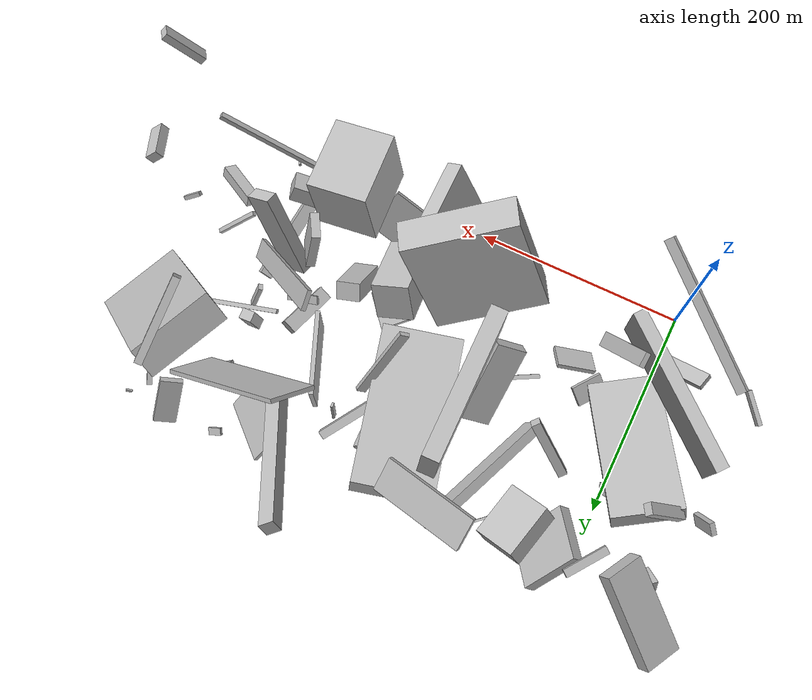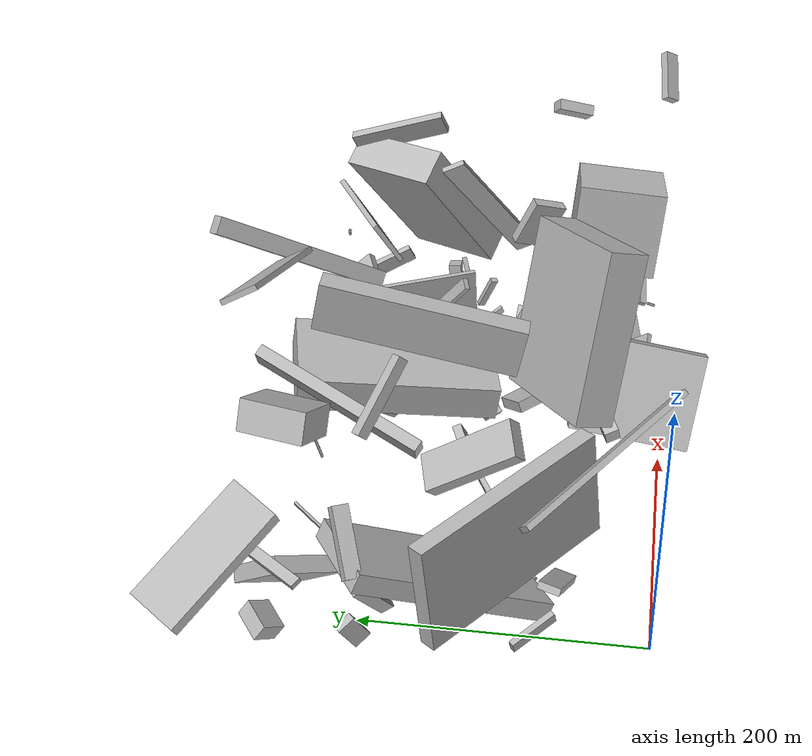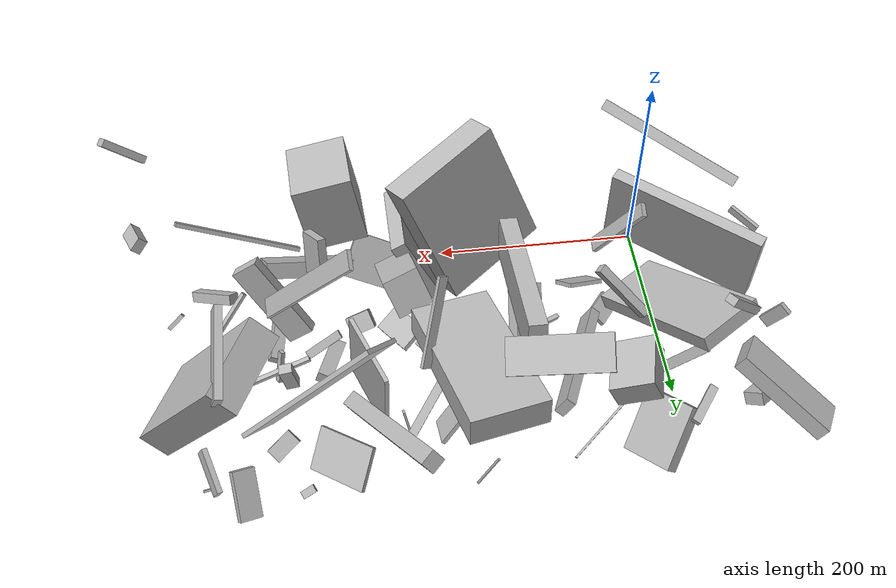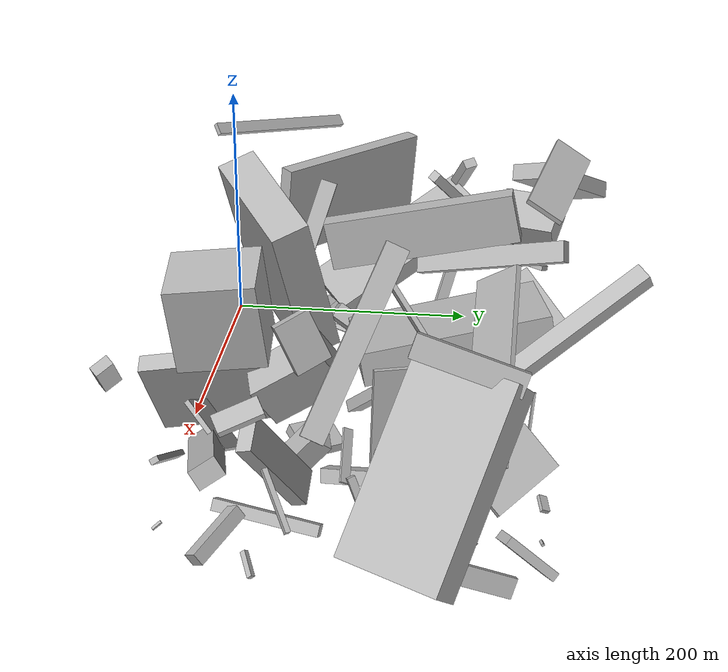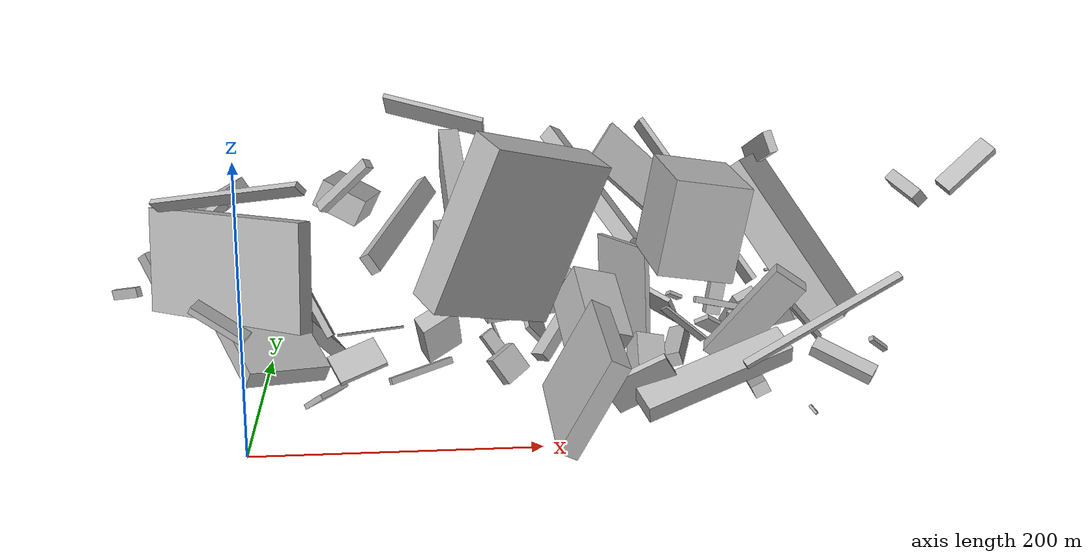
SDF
<sdf version="1.6">
 <world name="default">
  <model name="building_1">
   <static>0</static>
   <pose>247.25564616572376 14.462113491345617 75.60430960370272 -2.9635172434130266 0.45295531011546103 0.08792647730640184</pose>
   <link name="link">
    <gravity>0</gravity>
    <pose>0 0 38.0 0 0 0</pose>
    <collision name="collision"><geometry><box><size>15 94 76</size></box></geometry></collision>
    <visual name="visual">
     <cast_shadows>0</cast_shadows>
     <geometry><box><size>15 94 76</size></box></geometry>
     <material>
      <script>
       <uri>model://HANNAS_wall/materials/scripts</uri>
       <uri>model://HANNAS_wall/materials/textures</uri>
       <name>vrc/HANNAS_wall</name>
      </script>
     </material>
    </visual>
   </link>
  </model>
  <model name="building_5">
   <static>0</static>
   <pose>289.2142373373566 114.487340648304 39.522468649719194 -2.847032237965067 0.6554458507236693 1.9828597212272638</pose>
   <link name="link">
    <gravity>0</gravity>
    <pose>0 0 25.5 0 0 0</pose>
    <collision name="collision"><geometry><box><size>18 23 51</size></box></geometry></collision>
    <visual name="visual">
     <cast_shadows>0</cast_shadows>
     <geometry><box><size>18 23 51</size></box></geometry>
     <material>
      <script>
       <uri>model://HANNAS_wall/materials/scripts</uri>
       <uri>model://HANNAS_wall/materials/textures</uri>
       <name>vrc/HANNAS_wall</name>
      </script>
     </material>
    </visual>
   </link>
  </model>
  <model name="building_8">
   <static>0</static>
   <pose>286.3670632729056 189.67340590118386 58.65042328871326 -2.006356038778418 -1.519162268769796 2.370970248109026</pose>
   <link name="link">
    <gravity>0</gravity>
    <pose>0 0 2.0 0 0 0</pose>
    <collision name="collision"><geometry><box><size>77 75 4</size></box></geometry></collision>
    <visual name="visual">
     <cast_shadows>0</cast_shadows>
     <geometry><box><size>77 75 4</size></box></geometry>
     <material>
      <script>
       <uri>model://HANNAS_wall/materials/scripts</uri>
       <uri>model://HANNAS_wall/materials/textures</uri>
       <name>vrc/HANNAS_wall</name>
      </script>
     </material>
    </visual>
   </link>
  </model>
  <model name="building_9">
   <static>0</static>
   <pose>162.1933564102537 76.93561353719329 77.17163834129929 0.30598746392128373 0.23679884569680124 0.5829813841358437</pose>
   <link name="link">
    <gravity>0</gravity>
    <pose>0 0 63.5 0 0 0</pose>
    <collision name="collision"><geometry><box><size>103 30 127</size></box></geometry></collision>
    <visual name="visual">
     <cast_shadows>0</cast_shadows>
     <geometry><box><size>103 30 127</size></box></geometry>
     <material>
      <script>
       <uri>model://HANNAS_wall/materials/scripts</uri>
       <uri>model://HANNAS_wall/materials/textures</uri>
       <name>vrc/HANNAS_wall</name>
      </script>
     </material>
    </visual>
   </link>
  </model>
  <model name="building_11">
   <static>0</static>
   <pose>253.59817151545147 245.509929735574 33.314348179032564 -0.8123840279048146 -1.1819879248808915 1.7997221055847743</pose>
   <link name="link">
    <gravity>0</gravity>
    <pose>0 0 45.5 0 0 0</pose>
    <collision name="collision"><geometry><box><size>12 8 91</size></box></geometry></collision>
    <visual name="visual">
     <cast_shadows>0</cast_shadows>
     <geometry><box><size>12 8 91</size></box></geometry>
     <material>
      <script>
       <uri>model://HANNAS_wall/materials/scripts</uri>
       <uri>model://HANNAS_wall/materials/textures</uri>
       <name>vrc/HANNAS_wall</name>
      </script>
     </material>
    </visual>
   </link>
  </model>
  <model name="building_12">
   <static>0</static>
   <pose>187.52213046455998 204.89393665412254 64.36828580028632 -0.06006868556614837 -0.15044644811327174 1.820453800958363</pose>
   <link name="link">
    <gravity>0</gravity>
    <pose>0 0 13.5 0 0 0</pose>
    <collision name="collision"><geometry><box><size>150 74 27</size></box></geometry></collision>
    <visual name="visual">
     <cast_shadows>0</cast_shadows>
     <geometry><box><size>150 74 27</size></box></geometry>
     <material>
      <script>
       <uri>model://HANNAS_wall/materials/scripts</uri>
       <uri>model://HANNAS_wall/materials/textures</uri>
       <name>vrc/HANNAS_wall</name>
      </script>
     </material>
    </visual>
   </link>
  </model>
  <model name="building_13">
   <static>0</static>
   <pose>18.78002924352293 159.93461330873617 58.31733415195606 1.3397520099223323 -1.061775750951858 -0.8187858555109614</pose>
   <link name="link">
    <gravity>0</gravity>
    <pose>0 0 32.5 0 0 0</pose>
    <collision name="collision"><geometry><box><size>14 150 65</size></box></geometry></collision>
    <visual name="visual">
     <cast_shadows>0</cast_shadows>
     <geometry><box><size>14 150 65</size></box></geometry>
     <material>
      <script>
       <uri>model://HANNAS_wall/materials/scripts</uri>
       <uri>model://HANNAS_wall/materials/textures</uri>
       <name>vrc/HANNAS_wall</name>
      </script>
     </material>
    </visual>
   </link>
  </model>
  <model name="building_17">
   <static>0</static>
   <pose>81.33989562827404 168.13628327267443 87.74620029043935 1.0449991332170956 -0.9931294400301272 -3.0600626239854867</pose>
   <link name="link">
    <gravity>0</gravity>
    <pose>0 0 67.5 0 0 0</pose>
    <collision name="collision"><geometry><box><size>17 9 135</size></box></geometry></collision>
    <visual name="visual">
     <cast_shadows>0</cast_shadows>
     <geometry><box><size>17 9 135</size></box></geometry>
     <material>
      <script>
       <uri>model://HANNAS_wall/materials/scripts</uri>
       <uri>model://HANNAS_wall/materials/textures</uri>
       <name>vrc/HANNAS_wall</name>
      </script>
     </material>
    </visual>
   </link>
  </model>
  <model name="building_18">
   <static>0</static>
   <pose>405.32095406356575 175.27557718189587 92.2579783834339 1.666528057148727 -0.916146421783114 2.6066922761956195</pose>
   <link name="link">
    <gravity>0</gravity>
    <pose>0 0 40.0 0 0 0</pose>
    <collision name="collision"><geometry><box><size>150 30 80</size></box></geometry></collision>
    <visual name="visual">
     <cast_shadows>0</cast_shadows>
     <geometry><box><size>150 30 80</size></box></geometry>
     <material>
      <script>
       <uri>model://HANNAS_wall/materials/scripts</uri>
       <uri>model://HANNAS_wall/materials/textures</uri>
       <name>vrc/HANNAS_wall</name>
      </script>
     </material>
    </visual>
   </link>
  </model>
  <model name="building_22">
   <static>0</static>
   <pose>463.54089736277245 89.01485244951323 35.96948320459614 -0.7432093810470143 -0.5842371511405798 -0.6461628118480872</pose>
   <link name="link">
    <gravity>0</gravity>
    <pose>0 0 2.0 0 0 0</pose>
    <collision name="collision"><geometry><box><size>4 19 4</size></box></geometry></collision>
    <visual name="visual">
     <cast_shadows>0</cast_shadows>
     <geometry><box><size>4 19 4</size></box></geometry>
     <material>
      <script>
       <uri>model://HANNAS_wall/materials/scripts</uri>
       <uri>model://HANNAS_wall/materials/textures</uri>
       <name>vrc/HANNAS_wall</name>
      </script>
     </material>
    </visual>
   </link>
  </model>
  <model name="building_25">
   <static>0</static>
   <pose>-18.812848995216726 91.54447209559609 67.65528679205451 -0.049518898031811406 0.0791245015229284 0.88316561202585</pose>
   <link name="link">
    <gravity>0</gravity>
    <pose>0 0 39.0 0 0 0</pose>
    <collision name="collision"><geometry><box><size>12 150 78</size></box></geometry></collision>
    <visual name="visual">
     <cast_shadows>0</cast_shadows>
     <geometry><box><size>12 150 78</size></box></geometry>
     <material>
      <script>
       <uri>model://HANNAS_wall/materials/scripts</uri>
       <uri>model://HANNAS_wall/materials/textures</uri>
       <name>vrc/HANNAS_wall</name>
      </script>
     </material>
    </visual>
   </link>
  </model>
  <model name="building_26">
   <static>0</static>
   <pose>429.467461839679 249.96679776245674 21.223879239739812 -2.7088779864834422 0.227681322237212 -2.7192113132853972</pose>
   <link name="link">
    <gravity>0</gravity>
    <pose>0 0 7.5 0 0 0</pose>
    <collision name="collision"><geometry><box><size>5 42 15</size></box></geometry></collision>
    <visual name="visual">
     <cast_shadows>0</cast_shadows>
     <geometry><box><size>5 42 15</size></box></geometry>
     <material>
      <script>
       <uri>model://HANNAS_wall/materials/scripts</uri>
       <uri>model://HANNAS_wall/materials/textures</uri>
       <name>vrc/HANNAS_wall</name>
      </script>
     </material>
    </visual>
   </link>
  </model>
  <model name="building_27">
   <static>0</static>
   <pose>-40.38937221366661 67.6825734378724 86.49796692367192 2.1183583569414957 -0.10256188822992289 1.2975595576226358</pose>
   <link name="link">
    <gravity>0</gravity>
    <pose>0 0 22.0 0 0 0</pose>
    <collision name="collision"><geometry><box><size>15 5 44</size></box></geometry></collision>
    <visual name="visual">
     <cast_shadows>0</cast_shadows>
     <geometry><box><size>15 5 44</size></box></geometry>
     <material>
      <script>
       <uri>model://HANNAS_wall/materials/scripts</uri>
       <uri>model://HANNAS_wall/materials/textures</uri>
       <name>vrc/HANNAS_wall</name>
      </script>
     </material>
    </visual>
   </link>
  </model>
  <model name="building_31">
   <static>0</static>
   <pose>251.30746644366687 106.0294677410221 17.5369636872994 2.708077214649187 -0.09728091228997875 -0.8689740727330924</pose>
   <link name="link">
    <gravity>0</gravity>
    <pose>0 0 4.5 0 0 0</pose>
    <collision name="collision"><geometry><box><size>36 28 9</size></box></geometry></collision>
    <visual name="visual">
     <cast_shadows>0</cast_shadows>
     <geometry><box><size>36 28 9</size></box></geometry>
     <material>
      <script>
       <uri>model://HANNAS_wall/materials/scripts</uri>
       <uri>model://HANNAS_wall/materials/textures</uri>
       <name>vrc/HANNAS_wall</name>
      </script>
     </material>
    </visual>
   </link>
  </model>
  <model name="building_32">
   <static>0</static>
   <pose>378.3920067391892 46.734617768199385 53.5950499401965 -1.919837449566748 -0.5011555213389833 1.9584101541867578</pose>
   <link name="link">
    <gravity>0</gravity>
    <pose>0 0 57.0 0 0 0</pose>
    <collision name="collision"><geometry><box><size>22 16 114</size></box></geometry></collision>
    <visual name="visual">
     <cast_shadows>0</cast_shadows>
     <geometry><box><size>22 16 114</size></box></geometry>
     <material>
      <script>
       <uri>model://HANNAS_wall/materials/scripts</uri>
       <uri>model://HANNAS_wall/materials/textures</uri>
       <name>vrc/HANNAS_wall</name>
      </script>
     </material>
    </visual>
   </link>
  </model>
  <model name="building_34">
   <static>0</static>
   <pose>89.07675994336454 90.67669817633858 42.00629178556375 -1.9272594793093878 -0.5882406558450742 2.0949694536409105</pose>
   <link name="link">
    <gravity>0</gravity>
    <pose>0 0 18.5 0 0 0</pose>
    <collision name="collision"><geometry><box><size>25 4 37</size></box></geometry></collision>
    <visual name="visual">
     <cast_shadows>0</cast_shadows>
     <geometry><box><size>25 4 37</size></box></geometry>
     <material>
      <script>
       <uri>model://HANNAS_wall/materials/scripts</uri>
       <uri>model://HANNAS_wall/materials/textures</uri>
       <name>vrc/HANNAS_wall</name>
      </script>
     </material>
    </visual>
   </link>
  </model>
  <model name="building_35">
   <static>0</static>
   <pose>56.791031017421346 258.1897175253935 112.3007640568006 0.45227282718743594 0.022849789833979197 1.3300063151947592</pose>
   <link name="link">
    <gravity>0</gravity>
    <pose>0 0 11.5 0 0 0</pose>
    <collision name="collision"><geometry><box><size>49 39 23</size></box></geometry></collision>
    <visual name="visual">
     <cast_shadows>0</cast_shadows>
     <geometry><box><size>49 39 23</size></box></geometry>
     <material>
      <script>
       <uri>model://HANNAS_wall/materials/scripts</uri>
       <uri>model://HANNAS_wall/materials/textures</uri>
       <name>vrc/HANNAS_wall</name>
      </script>
     </material>
    </visual>
   </link>
  </model>
  <model name="building_36">
   <static>0</static>
   <pose>471.3837288821501 8.707934691546987 173.85690534004857 -0.621487582269368 -0.618373364829823 -2.136584592025859</pose>
   <link name="link">
    <gravity>0</gravity>
    <pose>0 0 21.0 0 0 0</pose>
    <collision name="collision"><geometry><box><size>7 13 42</size></box></geometry></collision>
    <visual name="visual">
     <cast_shadows>0</cast_shadows>
     <geometry><box><size>7 13 42</size></box></geometry>
     <material>
      <script>
       <uri>model://HANNAS_wall/materials/scripts</uri>
       <uri>model://HANNAS_wall/materials/textures</uri>
       <name>vrc/HANNAS_wall</name>
      </script>
     </material>
    </visual>
   </link>
  </model>
  <model name="building_37">
   <static>0</static>
   <pose>299.2673876512058 233.6726550322296 82.57154157676685 0.9837995325255778 -0.3812498785156166 -2.4317050497325856</pose>
   <link name="link">
    <gravity>0</gravity>
    <pose>0 0 75.0 0 0 0</pose>
    <collision name="collision"><geometry><box><size>14 14 150</size></box></geometry></collision>
    <visual name="visual">
     <cast_shadows>0</cast_shadows>
     <geometry><box><size>14 14 150</size></box></geometry>
     <material>
      <script>
       <uri>model://HANNAS_wall/materials/scripts</uri>
       <uri>model://HANNAS_wall/materials/textures</uri>
       <name>vrc/HANNAS_wall</name>
      </script>
     </material>
    </visual>
   </link>
  </model>
  <model name="building_38">
   <static>0</static>
   <pose>366.28107424971716 87.92768621640694 58.42611993978048 -1.1334995149552503 -0.8994942217542045 -0.5869380719809292</pose>
   <link name="link">
    <gravity>0</gravity>
    <pose>0 0 6.0 0 0 0</pose>
    <collision name="collision"><geometry><box><size>88 27 12</size></box></geometry></collision>
    <visual name="visual">
     <cast_shadows>0</cast_shadows>
     <geometry><box><size>88 27 12</size></box></geometry>
     <material>
      <script>
       <uri>model://HANNAS_wall/materials/scripts</uri>
       <uri>model://HANNAS_wall/materials/textures</uri>
       <name>vrc/HANNAS_wall</name>
      </script>
     </material>
    </visual>
   </link>
  </model>
  <model name="building_39">
   <static>0</static>
   <pose>315.33818773237783 258.59615858503804 33.65368959097306 2.3748529100059126 0.29755600461227183 -0.7384300951666917</pose>
   <link name="link">
    <gravity>0</gravity>
    <pose>0 0 2.0 0 0 0</pose>
    <collision name="collision"><geometry><box><size>63 40 4</size></box></geometry></collision>
    <visual name="visual">
     <cast_shadows>0</cast_shadows>
     <geometry><box><size>63 40 4</size></box></geometry>
     <material>
      <script>
       <uri>model://HANNAS_wall/materials/scripts</uri>
       <uri>model://HANNAS_wall/materials/textures</uri>
       <name>vrc/HANNAS_wall</name>
      </script>
     </material>
    </visual>
   </link>
  </model>
  <model name="building_40">
   <static>0</static>
   <pose>183.9116080784965 148.46586532553624 15.8557910608599 -0.5326970400177579 0.3552214829469265 1.8686910778129449</pose>
   <link name="link">
    <gravity>0</gravity>
    <pose>0 0 12.0 0 0 0</pose>
    <collision name="collision"><geometry><box><size>7 11 24</size></box></geometry></collision>
    <visual name="visual">
     <cast_shadows>0</cast_shadows>
     <geometry><box><size>7 11 24</size></box></geometry>
     <material>
      <script>
       <uri>model://HANNAS_wall/materials/scripts</uri>
       <uri>model://HANNAS_wall/materials/textures</uri>
       <name>vrc/HANNAS_wall</name>
      </script>
     </material>
    </visual>
   </link>
  </model>
  <model name="building_41">
   <static>0</static>
   <pose>119.9713107308157 118.5299907396188 16.669516553121223 -1.798482153867741 -0.13117734687985574 0.5130513707406217</pose>
   <link name="link">
    <gravity>0</gravity>
    <pose>0 0 2.0 0 0 0</pose>
    <collision name="collision"><geometry><box><size>54 5 4</size></box></geometry></collision>
    <visual name="visual">
     <cast_shadows>0</cast_shadows>
     <geometry><box><size>54 5 4</size></box></geometry>
     <material>
      <script>
       <uri>model://HANNAS_wall/materials/scripts</uri>
       <uri>model://HANNAS_wall/materials/textures</uri>
       <name>vrc/HANNAS_wall</name>
      </script>
     </material>
    </visual>
   </link>
  </model>
  <model name="building_42">
   <static>0</static>
   <pose>261.11567225328395 94.03048547250748 59.158541309429374 -1.2581169457684724 -0.5356005235111225 1.6756028678406902</pose>
   <link name="link">
    <gravity>0</gravity>
    <pose>0 0 17.5 0 0 0</pose>
    <collision name="collision"><geometry><box><size>63 38 35</size></box></geometry></collision>
    <visual name="visual">
     <cast_shadows>0</cast_shadows>
     <geometry><box><size>63 38 35</size></box></geometry>
     <material>
      <script>
       <uri>model://HANNAS_wall/materials/scripts</uri>
       <uri>model://HANNAS_wall/materials/textures</uri>
       <name>vrc/HANNAS_wall</name>
      </script>
     </material>
    </visual>
   </link>
  </model>
  <model name="building_43">
   <static>0</static>
   <pose>11.707797125586406 232.54317961684538 37.52165092603536 2.6131032191943184 0.731236870645216 -2.9013333451660595</pose>
   <link name="link">
    <gravity>0</gravity>
    <pose>0 0 30.5 0 0 0</pose>
    <collision name="collision"><geometry><box><size>12 54 61</size></box></geometry></collision>
    <visual name="visual">
     <cast_shadows>0</cast_shadows>
     <geometry><box><size>12 54 61</size></box></geometry>
     <material>
      <script>
       <uri>model://HANNAS_wall/materials/scripts</uri>
       <uri>model://HANNAS_wall/materials/textures</uri>
       <name>vrc/HANNAS_wall</name>
      </script>
     </material>
    </visual>
   </link>
  </model>
  <model name="building_44">
   <static>0</static>
   <pose>155.53332905108988 176.45139938329316 147.00198913074598 1.663688213078426 -1.3678467157275211 -1.6498588888812595</pose>
   <link name="link">
    <gravity>0</gravity>
    <pose>0 0 8.0 0 0 0</pose>
    <collision name="collision"><geometry><box><size>39 150 16</size></box></geometry></collision>
    <visual name="visual">
     <cast_shadows>0</cast_shadows>
     <geometry><box><size>39 150 16</size></box></geometry>
     <material>
      <script>
       <uri>model://HANNAS_wall/materials/scripts</uri>
       <uri>model://HANNAS_wall/materials/textures</uri>
       <name>vrc/HANNAS_wall</name>
      </script>
     </material>
    </visual>
   </link>
  </model>
  <model name="building_46">
   <static>0</static>
   <pose>371.5337982061027 120.45575892429878 80.79520716882539 -0.544083111459358 0.4539177477522626 1.6266103946777455</pose>
   <link name="link">
    <gravity>0</gravity>
    <pose>0 0 75.0 0 0 0</pose>
    <collision name="collision"><geometry><box><size>18 4 150</size></box></geometry></collision>
    <visual name="visual">
     <cast_shadows>0</cast_shadows>
     <geometry><box><size>18 4 150</size></box></geometry>
     <material>
      <script>
       <uri>model://HANNAS_wall/materials/scripts</uri>
       <uri>model://HANNAS_wall/materials/textures</uri>
       <name>vrc/HANNAS_wall</name>
      </script>
     </material>
    </visual>
   </link>
  </model>
  <model name="building_48">
   <static>0</static>
   <pose>-81.09818195186477 179.35921145348462 69.96617328985677 -0.5124602821230488 -0.15608704968688372 0.7911296424136584</pose>
   <link name="link">
    <gravity>0</gravity>
    <pose>0 0 14.5 0 0 0</pose>
    <collision name="collision"><geometry><box><size>5 12 29</size></box></geometry></collision>
    <visual name="visual">
     <cast_shadows>0</cast_shadows>
     <geometry><box><size>5 12 29</size></box></geometry>
     <material>
      <script>
       <uri>model://HANNAS_wall/materials/scripts</uri>
       <uri>model://HANNAS_wall/materials/textures</uri>
       <name>vrc/HANNAS_wall</name>
      </script>
     </material>
    </visual>
   </link>
  </model>
  <model name="building_52">
   <static>0</static>
   <pose>-13.740247487271716 184.34719747040322 33.2820896682487 -1.1132341987462364 -0.47178680195423484 -1.2462120250391016</pose>
   <link name="link">
    <gravity>0</gravity>
    <pose>0 0 2.0 0 0 0</pose>
    <collision name="collision"><geometry><box><size>10 52 4</size></box></geometry></collision>
    <visual name="visual">
     <cast_shadows>0</cast_shadows>
     <geometry><box><size>10 52 4</size></box></geometry>
     <material>
      <script>
       <uri>model://HANNAS_wall/materials/scripts</uri>
       <uri>model://HANNAS_wall/materials/textures</uri>
       <name>vrc/HANNAS_wall</name>
      </script>
     </material>
    </visual>
   </link>
  </model>
  <model name="building_55">
   <static>0</static>
   <pose>410.4647558987262 99.18252722009527 53.65258616327454 1.5723167616344047 -0.7396939122868391 -2.5264760769014734</pose>
   <link name="link">
    <gravity>0</gravity>
    <pose>0 0 2.0 0 0 0</pose>
    <collision name="collision"><geometry><box><size>48 4 4</size></box></geometry></collision>
    <visual name="visual">
     <cast_shadows>0</cast_shadows>
     <geometry><box><size>48 4 4</size></box></geometry>
     <material>
      <script>
       <uri>model://HANNAS_wall/materials/scripts</uri>
       <uri>model://HANNAS_wall/materials/textures</uri>
       <name>vrc/HANNAS_wall</name>
      </script>
     </material>
    </visual>
   </link>
  </model>
  <model name="building_56">
   <static>0</static>
   <pose>-54.07093009144697 243.41038400036166 50.02042232015305 -0.47012985876268215 0.9279443488047018 1.8872585080148483</pose>
   <link name="link">
    <gravity>0</gravity>
    <pose>0 0 9.0 0 0 0</pose>
    <collision name="collision"><geometry><box><size>12 22 18</size></box></geometry></collision>
    <visual name="visual">
     <cast_shadows>0</cast_shadows>
     <geometry><box><size>12 22 18</size></box></geometry>
     <material>
      <script>
       <uri>model://HANNAS_wall/materials/scripts</uri>
       <uri>model://HANNAS_wall/materials/textures</uri>
       <name>vrc/HANNAS_wall</name>
      </script>
     </material>
    </visual>
   </link>
  </model>
  <model name="building_58">
   <static>0</static>
   <pose>373.9152919280259 170.7180401129542 48.285809987106674 -2.9203304285537093 -0.24129278937826587 -2.936492021775506</pose>
   <link name="link">
    <gravity>0</gravity>
    <pose>0 0 2.5 0 0 0</pose>
    <collision name="collision"><geometry><box><size>76 4 5</size></box></geometry></collision>
    <visual name="visual">
     <cast_shadows>0</cast_shadows>
     <geometry><box><size>76 4 5</size></box></geometry>
     <material>
      <script>
       <uri>model://HANNAS_wall/materials/scripts</uri>
       <uri>model://HANNAS_wall/materials/textures</uri>
       <name>vrc/HANNAS_wall</name>
      </script>
     </material>
    </visual>
   </link>
  </model>
  <model name="building_59">
   <static>0</static>
   <pose>303.0199983846998 48.86169154194291 114.52125934014097 0.09806190362552697 0.15294876510740987 0.0753104393510256</pose>
   <link name="link">
    <gravity>0</gravity>
    <pose>0 0 34.0 0 0 0</pose>
    <collision name="collision"><geometry><box><size>54 66 68</size></box></geometry></collision>
    <visual name="visual">
     <cast_shadows>0</cast_shadows>
     <geometry><box><size>54 66 68</size></box></geometry>
     <material>
      <script>
       <uri>model://HANNAS_wall/materials/scripts</uri>
       <uri>model://HANNAS_wall/materials/textures</uri>
       <name>vrc/HANNAS_wall</name>
      </script>
     </material>
    </visual>
   </link>
  </model>
  <model name="building_62">
   <static>0</static>
   <pose>61.18313088458242 193.19000645813773 148.74599892078035 2.382626858404196 0.26474788931610505 0.7993337314036323</pose>
   <link name="link">
    <gravity>0</gravity>
    <pose>0 0 4.0 0 0 0</pose>
    <collision name="collision"><geometry><box><size>8 59 8</size></box></geometry></collision>
    <visual name="visual">
     <cast_shadows>0</cast_shadows>
     <geometry><box><size>8 59 8</size></box></geometry>
     <material>
      <script>
       <uri>model://HANNAS_wall/materials/scripts</uri>
       <uri>model://HANNAS_wall/materials/textures</uri>
       <name>vrc/HANNAS_wall</name>
      </script>
     </material>
    </visual>
   </link>
  </model>
  <model name="building_68">
   <static>0</static>
   <pose>364.31971547945994 151.48768192394078 32.98450289416782 1.2220683064324007 -0.23797091134192394 2.107031485262094</pose>
   <link name="link">
    <gravity>0</gravity>
    <pose>0 0 2.0 0 0 0</pose>
    <collision name="collision"><geometry><box><size>6 32 4</size></box></geometry></collision>
    <visual name="visual">
     <cast_shadows>0</cast_shadows>
     <geometry><box><size>6 32 4</size></box></geometry>
     <material>
      <script>
       <uri>model://HANNAS_wall/materials/scripts</uri>
       <uri>model://HANNAS_wall/materials/textures</uri>
       <name>vrc/HANNAS_wall</name>
      </script>
     </material>
    </visual>
   </link>
  </model>
  <model name="building_72">
   <static>0</static>
   <pose>224.55455556083265 174.2782308978197 107.08139518068751 1.1192578961626158 0.5037900030168279 -2.780945667403849</pose>
   <link name="link">
    <gravity>0</gravity>
    <pose>0 0 2.0 0 0 0</pose>
    <collision name="collision"><geometry><box><size>9 85 4</size></box></geometry></collision>
    <visual name="visual">
     <cast_shadows>0</cast_shadows>
     <geometry><box><size>9 85 4</size></box></geometry>
     <material>
      <script>
       <uri>model://HANNAS_wall/materials/scripts</uri>
       <uri>model://HANNAS_wall/materials/textures</uri>
       <name>vrc/HANNAS_wall</name>
      </script>
     </material>
    </visual>
   </link>
  </model>
  <model name="building_73">
   <static>0</static>
   <pose>481.3014257584049 94.06903518306544 152.89259470409738 -0.8547389931059746 -0.3221391925991752 1.939389360558728</pose>
   <link name="link">
    <gravity>0</gravity>
    <pose>0 0 6.5 0 0 0</pose>
    <collision name="collision"><geometry><box><size>32 9 13</size></box></geometry></collision>
    <visual name="visual">
     <cast_shadows>0</cast_shadows>
     <geometry><box><size>32 9 13</size></box></geometry>
     <material>
      <script>
       <uri>model://HANNAS_wall/materials/scripts</uri>
       <uri>model://HANNAS_wall/materials/textures</uri>
       <name>vrc/HANNAS_wall</name>
      </script>
     </material>
    </visual>
   </link>
  </model>
  <model name="building_74">
   <static>0</static>
   <pose>356.5430800413361 183.031607848068 51.681674568245796 1.157911969568642 -1.379176330080836 0.4286913717008975</pose>
   <link name="link">
    <gravity>0</gravity>
    <pose>0 0 5.0 0 0 0</pose>
    <collision name="collision"><geometry><box><size>27 12 10</size></box></geometry></collision>
    <visual name="visual">
     <cast_shadows>0</cast_shadows>
     <geometry><box><size>27 12 10</size></box></geometry>
     <material>
      <script>
       <uri>model://HANNAS_wall/materials/scripts</uri>
       <uri>model://HANNAS_wall/materials/textures</uri>
       <name>vrc/HANNAS_wall</name>
      </script>
     </material>
    </visual>
   </link>
  </model>
  <model name="building_79">
   <static>0</static>
   <pose>343.54963387102725 19.98584649297899 47.92100070998791 -0.7636655469709582 -0.8577958290450907 -2.1568101285680927</pose>
   <link name="link">
    <gravity>0</gravity>
    <pose>0 0 63.0 0 0 0</pose>
    <collision name="collision"><geometry><box><size>4 6 126</size></box></geometry></collision>
    <visual name="visual">
     <cast_shadows>0</cast_shadows>
     <geometry><box><size>4 6 126</size></box></geometry>
     <material>
      <script>
       <uri>model://HANNAS_wall/materials/scripts</uri>
       <uri>model://HANNAS_wall/materials/textures</uri>
       <name>vrc/HANNAS_wall</name>
      </script>
     </material>
    </visual>
   </link>
  </model>
  <model name="building_80">
   <static>0</static>
   <pose>-75.67586168476885 62.5386279147461 99.28596062913654 1.8225871056071106 0.05928784596838944 -2.383639295342979</pose>
   <link name="link">
    <gravity>0</gravity>
    <pose>0 0 16.0 0 0 0</pose>
    <collision name="collision"><geometry><box><size>4 7 32</size></box></geometry></collision>
    <visual name="visual">
     <cast_shadows>0</cast_shadows>
     <geometry><box><size>4 7 32</size></box></geometry>
     <material>
      <script>
       <uri>model://HANNAS_wall/materials/scripts</uri>
       <uri>model://HANNAS_wall/materials/textures</uri>
       <name>vrc/HANNAS_wall</name>
      </script>
     </material>
    </visual>
   </link>
  </model>
  <model name="building_81">
   <static>0</static>
   <pose>271.9724812911328 31.27646409444347 33.786971019964206 2.3293594890180143 -0.47228653030568774 -0.104187882560274</pose>
   <link name="link">
    <gravity>0</gravity>
    <pose>0 0 2.0 0 0 0</pose>
    <collision name="collision"><geometry><box><size>49 46 4</size></box></geometry></collision>
    <visual name="visual">
     <cast_shadows>0</cast_shadows>
     <geometry><box><size>49 46 4</size></box></geometry>
     <material>
      <script>
       <uri>model://HANNAS_wall/materials/scripts</uri>
       <uri>model://HANNAS_wall/materials/textures</uri>
       <name>vrc/HANNAS_wall</name>
      </script>
     </material>
    </visual>
   </link>
  </model>
  <model name="building_82">
   <static>0</static>
   <pose>402.0384513994103 257.57384982307826 30.7849200125278 -2.352248111093461 -0.31253785096622605 0.40515826344760897</pose>
   <link name="link">
    <gravity>0</gravity>
    <pose>0 0 22.5 0 0 0</pose>
    <collision name="collision"><geometry><box><size>21 7 45</size></box></geometry></collision>
    <visual name="visual">
     <cast_shadows>0</cast_shadows>
     <geometry><box><size>21 7 45</size></box></geometry>
     <material>
      <script>
       <uri>model://HANNAS_wall/materials/scripts</uri>
       <uri>model://HANNAS_wall/materials/textures</uri>
       <name>vrc/HANNAS_wall</name>
      </script>
     </material>
    </visual>
   </link>
  </model>
  <model name="building_83">
   <static>0</static>
   <pose>176.36790917458032 271.54634092151025 177.9974920742519 1.1826396828783081 0.9571871566140202 -2.1239477678064067</pose>
   <link name="link">
    <gravity>0</gravity>
    <pose>0 0 43.0 0 0 0</pose>
    <collision name="collision"><geometry><box><size>4 31 86</size></box></geometry></collision>
    <visual name="visual">
     <cast_shadows>0</cast_shadows>
     <geometry><box><size>4 31 86</size></box></geometry>
     <material>
      <script>
       <uri>model://HANNAS_wall/materials/scripts</uri>
       <uri>model://HANNAS_wall/materials/textures</uri>
       <name>vrc/HANNAS_wall</name>
      </script>
     </material>
    </visual>
   </link>
  </model>
  <model name="building_84">
   <static>0</static>
   <pose>-10.213686590290376 39.70594740750562 171.13850350287086 2.8562792772150907 0.7914831592615696 0.6769443741035043</pose>
   <link name="link">
    <gravity>0</gravity>
    <pose>0 0 2.0 0 0 0</pose>
    <collision name="collision"><geometry><box><size>10 142 4</size></box></geometry></collision>
    <visual name="visual">
     <cast_shadows>0</cast_shadows>
     <geometry><box><size>10 142 4</size></box></geometry>
     <material>
      <script>
       <uri>model://HANNAS_wall/materials/scripts</uri>
       <uri>model://HANNAS_wall/materials/textures</uri>
       <name>vrc/HANNAS_wall</name>
      </script>
     </material>
    </visual>
   </link>
  </model>
  <model name="building_87">
   <static>0</static>
   <pose>327.9171062007027 241.29492476685584 119.94560608730684 2.279741690874351 -0.7338479930205137 3.1387422454148193</pose>
   <link name="link">
    <gravity>0</gravity>
    <pose>0 0 2.0 0 0 0</pose>
    <collision name="collision"><geometry><box><size>150 45 4</size></box></geometry></collision>
    <visual name="visual">
     <cast_shadows>0</cast_shadows>
     <geometry><box><size>150 45 4</size></box></geometry>
     <material>
      <script>
       <uri>model://HANNAS_wall/materials/scripts</uri>
       <uri>model://HANNAS_wall/materials/textures</uri>
       <name>vrc/HANNAS_wall</name>
      </script>
     </material>
    </visual>
   </link>
  </model>
  <model name="building_88">
   <static>0</static>
   <pose>-12.385947960692983 254.27153954923097 50.630576590829016 -0.0680918253267182 -1.2802670285233646 2.5754514324975872</pose>
   <link name="link">
    <gravity>0</gravity>
    <pose>0 0 4.0 0 0 0</pose>
    <collision name="collision"><geometry><box><size>4 44 8</size></box></geometry></collision>
    <visual name="visual">
     <cast_shadows>0</cast_shadows>
     <geometry><box><size>4 44 8</size></box></geometry>
     <material>
      <script>
       <uri>model://HANNAS_wall/materials/scripts</uri>
       <uri>model://HANNAS_wall/materials/textures</uri>
       <name>vrc/HANNAS_wall</name>
      </script>
     </material>
    </visual>
   </link>
  </model>
  <model name="building_90">
   <static>0</static>
   <pose>136.56257660849272 133.71911444949384 37.2600006266617 0.5914054954069686 -0.6014133189295712 -1.658074503975045</pose>
   <link name="link">
    <gravity>0</gravity>
    <pose>0 0 6.5 0 0 0</pose>
    <collision name="collision"><geometry><box><size>81 30 13</size></box></geometry></collision>
    <visual name="visual">
     <cast_shadows>0</cast_shadows>
     <geometry><box><size>81 30 13</size></box></geometry>
     <material>
      <script>
       <uri>model://HANNAS_wall/materials/scripts</uri>
       <uri>model://HANNAS_wall/materials/textures</uri>
       <name>vrc/HANNAS_wall</name>
      </script>
     </material>
    </visual>
   </link>
  </model>
  <model name="building_94">
   <static>0</static>
   <pose>180.74804003260107 35.444574419564184 48.41674662362126 -1.9399932847195434 -0.49708617663058635 0.5304662182855101</pose>
   <link name="link">
    <gravity>0</gravity>
    <pose>0 0 5.5 0 0 0</pose>
    <collision name="collision"><geometry><box><size>20 21 11</size></box></geometry></collision>
    <visual name="visual">
     <cast_shadows>0</cast_shadows>
     <geometry><box><size>20 21 11</size></box></geometry>
     <material>
      <script>
       <uri>model://HANNAS_wall/materials/scripts</uri>
       <uri>model://HANNAS_wall/materials/textures</uri>
       <name>vrc/HANNAS_wall</name>
      </script>
     </material>
    </visual>
   </link>
  </model>
  <model name="building_97">
   <static>0</static>
   <pose>446.9876313962713 50.255215128633765 26.50381312388268 -0.9143457283457831 0.9668211953504809 1.6026779509502476</pose>
   <link name="link">
    <gravity>0</gravity>
    <pose>0 0 24.0 0 0 0</pose>
    <collision name="collision"><geometry><box><size>10 12 48</size></box></geometry></collision>
    <visual name="visual">
     <cast_shadows>0</cast_shadows>
     <geometry><box><size>10 12 48</size></box></geometry>
     <material>
      <script>
       <uri>model://HANNAS_wall/materials/scripts</uri>
       <uri>model://HANNAS_wall/materials/textures</uri>
       <name>vrc/HANNAS_wall</name>
      </script>
     </material>
    </visual>
   </link>
  </model>
  <model name="building_99">
   <static>0</static>
   <pose>-30.096666971152114 252.98524175979273 128.77560298298295 -2.5818609767561695 1.003196645588387 -0.04150758331362545</pose>
   <link name="link">
    <gravity>0</gravity>
    <pose>0 0 46.5 0 0 0</pose>
    <collision name="collision"><geometry><box><size>14 36 93</size></box></geometry></collision>
    <visual name="visual">
     <cast_shadows>0</cast_shadows>
     <geometry><box><size>14 36 93</size></box></geometry>
     <material>
      <script>
       <uri>model://HANNAS_wall/materials/scripts</uri>
       <uri>model://HANNAS_wall/materials/textures</uri>
       <name>vrc/HANNAS_wall</name>
      </script>
     </material>
    </visual>
   </link>
  </model>
  <model name="building_102">
   <static>0</static>
   <pose>321.5710540474726 144.02456037834025 17.784039691397812 -0.18231878991344194 0.3101732849938578 2.778013565042584</pose>
   <link name="link">
    <gravity>0</gravity>
    <pose>0 0 5.5 0 0 0</pose>
    <collision name="collision"><geometry><box><size>14 49 11</size></box></geometry></collision>
    <visual name="visual">
     <cast_shadows>0</cast_shadows>
     <geometry><box><size>14 49 11</size></box></geometry>
     <material>
      <script>
       <uri>model://HANNAS_wall/materials/scripts</uri>
       <uri>model://HANNAS_wall/materials/textures</uri>
       <name>vrc/HANNAS_wall</name>
      </script>
     </material>
    </visual>
   </link>
  </model>
  <model name="building_103">
   <static>0</static>
   <pose>339.459721690575 281.1760387785097 26.826751663361566 2.070649469959397 0.46320578548384445 2.0827961709569416</pose>
   <link name="link">
    <gravity>0</gravity>
    <pose>0 0 6.5 0 0 0</pose>
    <collision name="collision"><geometry><box><size>7 3 13</size></box></geometry></collision>
    <visual name="visual">
     <cast_shadows>0</cast_shadows>
     <geometry><box><size>7 3 13</size></box></geometry>
     <material>
      <script>
       <uri>model://HANNAS_wall/materials/scripts</uri>
       <uri>model://HANNAS_wall/materials/textures</uri>
       <name>vrc/HANNAS_wall</name>
      </script>
     </material>
    </visual>
   </link>
  </model>
  <model name="building_105">
   <static>0</static>
   <pose>340.55484903942397 139.0341968376507 29.019166256987283 -0.6485681525834855 -0.6481863238244528 0.9393952095577466</pose>
   <link name="link">
    <gravity>0</gravity>
    <pose>0 0 21.0 0 0 0</pose>
    <collision name="collision"><geometry><box><size>2 8 42</size></box></geometry></collision>
    <visual name="visual">
     <cast_shadows>0</cast_shadows>
     <geometry><box><size>2 8 42</size></box></geometry>
     <material>
      <script>
       <uri>model://HANNAS_wall/materials/scripts</uri>
       <uri>model://HANNAS_wall/materials/textures</uri>
       <name>vrc/HANNAS_wall</name>
      </script>
     </material>
    </visual>
   </link>
  </model>
  <model name="building_109">
   <static>0</static>
   <pose>54.61586266010831 92.76395026464294 12.344709748499021 2.174364103457198 0.04198822482832553 -2.2141189137465336</pose>
   <link name="link">
    <gravity>0</gravity>
    <pose>0 0 10.0 0 0 0</pose>
    <collision name="collision"><geometry><box><size>30 4 20</size></box></geometry></collision>
    <visual name="visual">
     <cast_shadows>0</cast_shadows>
     <geometry><box><size>30 4 20</size></box></geometry>
     <material>
      <script>
       <uri>model://HANNAS_wall/materials/scripts</uri>
       <uri>model://HANNAS_wall/materials/textures</uri>
       <name>vrc/HANNAS_wall</name>
      </script>
     </material>
    </visual>
   </link>
  </model>
  <model name="building_110">
   <static>0</static>
   <pose>426.08707004626524 283.56037266171467 44.92483442695803 -1.4396688891590577 0.6341601712968914 -1.247124622989717</pose>
   <link name="link">
    <gravity>0</gravity>
    <pose>0 0 3.0 0 0 0</pose>
    <collision name="collision"><geometry><box><size>2 2 6</size></box></geometry></collision>
    <visual name="visual">
     <cast_shadows>0</cast_shadows>
     <geometry><box><size>2 2 6</size></box></geometry>
     <material>
      <script>
       <uri>model://HANNAS_wall/materials/scripts</uri>
       <uri>model://HANNAS_wall/materials/textures</uri>
       <name>vrc/HANNAS_wall</name>
      </script>
     </material>
    </visual>
   </link>
  </model>
  <model name="building_113">
   <static>0</static>
   <pose>401.90716967908975 193.95857736926928 175.53479528732544 2.4032191362915496 -1.1304094373146802 2.3277099093289846</pose>
   <link name="link">
    <gravity>0</gravity>
    <pose>0 0 40.0 0 0 0</pose>
    <collision name="collision"><geometry><box><size>18 7 80</size></box></geometry></collision>
    <visual name="visual">
     <cast_shadows>0</cast_shadows>
     <geometry><box><size>18 7 80</size></box></geometry>
     <material>
      <script>
       <uri>model://HANNAS_wall/materials/scripts</uri>
       <uri>model://HANNAS_wall/materials/textures</uri>
       <name>vrc/HANNAS_wall</name>
      </script>
     </material>
    </visual>
   </link>
  </model>
  <model name="building_114">
   <static>0</static>
   <pose>214.55712894387338 236.7805376904994 24.013547743953556 2.014899697170092 -0.6383934590250333 -0.21542139167307683</pose>
   <link name="link">
    <gravity>0</gravity>
    <pose>0 0 16.5 0 0 0</pose>
    <collision name="collision"><geometry><box><size>4 29 33</size></box></geometry></collision>
    <visual name="visual">
     <cast_shadows>0</cast_shadows>
     <geometry><box><size>4 29 33</size></box></geometry>
     <material>
      <script>
       <uri>model://HANNAS_wall/materials/scripts</uri>
       <uri>model://HANNAS_wall/materials/textures</uri>
       <name>vrc/HANNAS_wall</name>
      </script>
     </material>
    </visual>
   </link>
  </model>
  <model name="building_116">
   <static>0</static>
   <pose>176.8917922708934 269.30610063246996 23.253842825291763 2.890549363110543 -0.29090208587789546 0.4764609362322281</pose>
   <link name="link">
    <gravity>0</gravity>
    <pose>0 0 24.0 0 0 0</pose>
    <collision name="collision"><geometry><box><size>2 2 48</size></box></geometry></collision>
    <visual name="visual">
     <cast_shadows>0</cast_shadows>
     <geometry><box><size>2 2 48</size></box></geometry>
     <material>
      <script>
       <uri>model://HANNAS_wall/materials/scripts</uri>
       <uri>model://HANNAS_wall/materials/textures</uri>
       <name>vrc/HANNAS_wall</name>
      </script>
     </material>
    </visual>
   </link>
  </model>
  <model name="building_118">
   <static>0</static>
   <pose>373.4782041399335 86.22550956502316 16.727637647016994 2.855047918475635 1.068543029677957 -0.38478518578680454</pose>
   <link name="link">
    <gravity>0</gravity>
    <pose>0 0 6.0 0 0 0</pose>
    <collision name="collision"><geometry><box><size>9 80 12</size></box></geometry></collision>
    <visual name="visual">
     <cast_shadows>0</cast_shadows>
     <geometry><box><size>9 80 12</size></box></geometry>
     <material>
      <script>
       <uri>model://HANNAS_wall/materials/scripts</uri>
       <uri>model://HANNAS_wall/materials/textures</uri>
       <name>vrc/HANNAS_wall</name>
      </script>
     </material>
    </visual>
   </link>
  </model>
  <model name="building_120">
   <static>0</static>
   <pose>-50.87632481872887 198.71113623523354 117.5106021055035 1.7497257823886967 0.7838875790493914 0.6654691331322582</pose>
   <link name="link">
    <gravity>0</gravity>
    <pose>0 0 5.5 0 0 0</pose>
    <collision name="collision"><geometry><box><size>8 46 11</size></box></geometry></collision>
    <visual name="visual">
     <cast_shadows>0</cast_shadows>
     <geometry><box><size>8 46 11</size></box></geometry>
     <material>
      <script>
       <uri>model://HANNAS_wall/materials/scripts</uri>
       <uri>model://HANNAS_wall/materials/textures</uri>
       <name>vrc/HANNAS_wall</name>
      </script>
     </material>
    </visual>
   </link>
  </model>
  <model name="building_121">
   <static>0</static>
   <pose>34.4798893010363 73.21541862526266 95.94003503392727 0.5545985541903231 -1.008526017865259 2.616477675117241</pose>
   <link name="link">
    <gravity>0</gravity>
    <pose>0 0 2.5 0 0 0</pose>
    <collision name="collision"><geometry><box><size>80 14 5</size></box></geometry></collision>
    <visual name="visual">
     <cast_shadows>0</cast_shadows>
     <geometry><box><size>80 14 5</size></box></geometry>
     <material>
      <script>
       <uri>model://HANNAS_wall/materials/scripts</uri>
       <uri>model://HANNAS_wall/materials/textures</uri>
       <name>vrc/HANNAS_wall</name>
      </script>
     </material>
    </visual>
   </link>
  </model>
  <model name="building_124">
   <static>0</static>
   <pose>210.56484014035743 129.31464216931593 21.078924687085358 0.8819270478284246 0.1795392877284386 2.2274645324234217</pose>
   <link name="link">
    <gravity>0</gravity>
    <pose>0 0 20.5 0 0 0</pose>
    <collision name="collision"><geometry><box><size>13 9 41</size></box></geometry></collision>
    <visual name="visual">
     <cast_shadows>0</cast_shadows>
     <geometry><box><size>13 9 41</size></box></geometry>
     <material>
      <script>
       <uri>model://HANNAS_wall/materials/scripts</uri>
       <uri>model://HANNAS_wall/materials/textures</uri>
       <name>vrc/HANNAS_wall</name>
      </script>
     </material>
    </visual>
   </link>
  </model>
  <model name="building_125">
   <static>0</static>
   <pose>366.5253491851059 225.45055933635234 12.00804763873142 -0.5967747651881267 0.5259515944030468 0.5069680504587365</pose>
   <link name="link">
    <gravity>0</gravity>
    <pose>0 0 2.0 0 0 0</pose>
    <collision name="collision"><geometry><box><size>27 15 4</size></box></geometry></collision>
    <visual name="visual">
     <cast_shadows>0</cast_shadows>
     <geometry><box><size>27 15 4</size></box></geometry>
     <material>
      <script>
       <uri>model://HANNAS_wall/materials/scripts</uri>
       <uri>model://HANNAS_wall/materials/textures</uri>
       <name>vrc/HANNAS_wall</name>
      </script>
     </material>
    </visual>
   </link>
  </model>
  <model name="building_127">
   <static>0</static>
   <pose>325.8173418000256 108.81708360546433 133.46381314862913 1.7959524705013852 0.3607142156012139 -1.036408725735941</pose>
   <link name="link">
    <gravity>0</gravity>
    <pose>0 0 4.0 0 0 0</pose>
    <collision name="collision"><geometry><box><size>28 40 8</size></box></geometry></collision>
    <visual name="visual">
     <cast_shadows>0</cast_shadows>
     <geometry><box><size>28 40 8</size></box></geometry>
     <material>
      <script>
       <uri>model://HANNAS_wall/materials/scripts</uri>
       <uri>model://HANNAS_wall/materials/textures</uri>
       <name>vrc/HANNAS_wall</name>
      </script>
     </material>
    </visual>
   </link>
  </model>
  <model name="building_129">
   <static>0</static>
   <pose>389.5121126835486 14.639529884411605 18.461303247414932 -2.1719729878433762 -0.3591386768382073 -2.3535874222496345</pose>
   <link name="link">
    <gravity>0</gravity>
    <pose>0 0 4.0 0 0 0</pose>
    <collision name="collision"><geometry><box><size>2 2 8</size></box></geometry></collision>
    <visual name="visual">
     <cast_shadows>0</cast_shadows>
     <geometry><box><size>2 2 8</size></box></geometry>
     <material>
      <script>
       <uri>model://HANNAS_wall/materials/scripts</uri>
       <uri>model://HANNAS_wall/materials/textures</uri>
       <name>vrc/HANNAS_wall</name>
      </script>
     </material>
    </visual>
   </link>
  </model>
  <model name="building_130">
   <static>0</static>
   <pose>255.76046383056507 220.03696288730288 25.28320253043624 1.1400987570750294 -1.1900395562912793 -1.0127084620336058</pose>
   <link name="link">
    <gravity>0</gravity>
    <pose>0 0 1.0 0 0 0</pose>
    <collision name="collision"><geometry><box><size>20 5 2</size></box></geometry></collision>
    <visual name="visual">
     <cast_shadows>0</cast_shadows>
     <geometry><box><size>20 5 2</size></box></geometry>
     <material>
      <script>
       <uri>model://HANNAS_wall/materials/scripts</uri>
       <uri>model://HANNAS_wall/materials/textures</uri>
       <name>vrc/HANNAS_wall</name>
      </script>
     </material>
    </visual>
   </link>
  </model>
  <model name="building_131">
   <static>0</static>
   <pose>79.63142724462853 241.13824957687865 11.128507865339337 1.758485183399882 -0.12080637896049366 -2.4128903740354573</pose>
   <link name="link">
    <gravity>0</gravity>
    <pose>0 0 1.0 0 0 0</pose>
    <collision name="collision"><geometry><box><size>72 2 2</size></box></geometry></collision>
    <visual name="visual">
     <cast_shadows>0</cast_shadows>
     <geometry><box><size>72 2 2</size></box></geometry>
     <material>
      <script>
       <uri>model://HANNAS_wall/materials/scripts</uri>
       <uri>model://HANNAS_wall/materials/textures</uri>
       <name>vrc/HANNAS_wall</name>
      </script>
     </material>
    </visual>
   </link>
  </model>
 </world>
</sdf>
